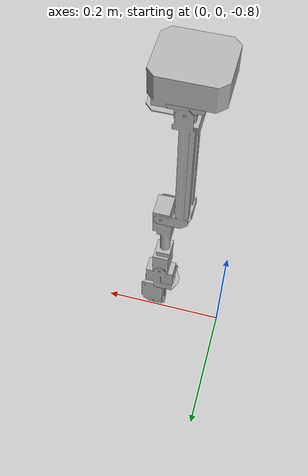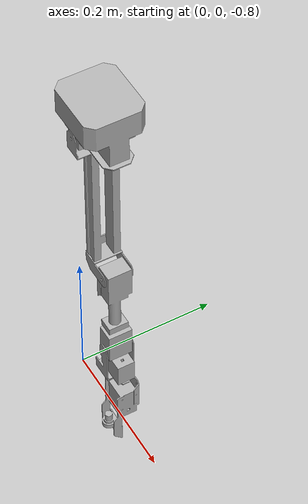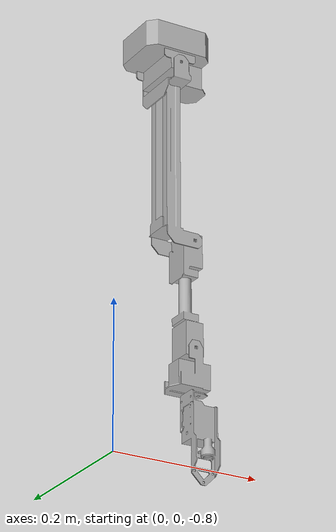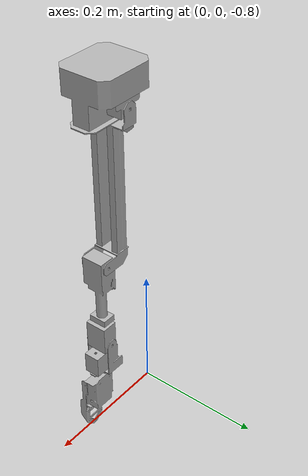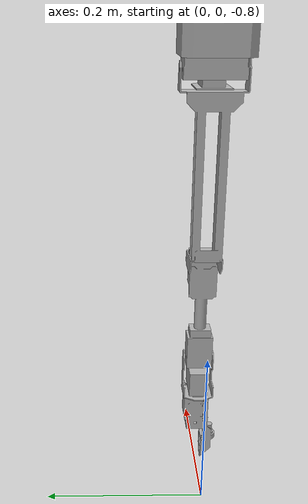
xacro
<?xml version="1.0" encoding="utf-8"?>
<robot name="myam_roarm" xmlns:xacro="http://www.ros.org/wiki/xacro">
  <link name="base_link">
    <inertial>
      <origin xyz="0 0 0" rpy="0 0 0"/>
      <mass value="0.001"/>
      <inertia ixx="1e-9" ixy="0" ixz="0" iyy="1e-9" iyz="0" izz="1e-9"/>
    </inertial>
  </link>

  <xacro:include filename="$(find myam_description)/urdf/roarm_m3_arm_mounted.xacro"/>
  <xacro:roarm_m3_arm_mounted
    parent_link="base_link"
    mount_xyz="0.073168 -0.0021131 -0.2185"
    mount_rpy="3.141592653589793 0 0.00022095"/>

  <!-- libgazebo_ros_control 在 PX4 的 myam.sdf 中加载；此处仅提供关节树供 robotParam 匹配 -->
</robot>

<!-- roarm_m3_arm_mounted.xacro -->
<robot xmlns:xacro="http://www.ros.org/wiki/xacro">
  <xacro:macro name="roarm_m3_arm_mounted" params="parent_link mount_xyz mount_rpy minimal_gripper_collision:=false">
    <material name="silver">
      <color rgba="0.700 0.700 0.700 1.000"/>
    </material>

    <!-- 父 link 上 origin 的 rpy：常需 roll=π 将 roarm 的 +Z 伸臂方向翻到机身 −Z（朝下），由 myam_sys.xacro 传入 -->
    <joint name="arm_mount_joint" type="fixed">
      <origin xyz="${mount_xyz}" rpy="${mount_rpy}"/>
      <parent link="${parent_link}"/>
      <child link="roarm_base_link"/>
    </joint>

    <link name="roarm_base_link">
      <inertial>
        <origin xyz="-0.0068 0 -0.03" rpy="0 0 0"/>
        <mass value="0.2562183"/>
        <inertia ixx="0.00029211" ixy="0" ixz="0" iyy="0.00035719" iyz="0" izz="0.000349421"/>
      </inertial>
      <visual>
        <origin xyz="0 0 0" rpy="0 0 0"/>
        <geometry>
          <mesh filename="file://$(find roarm_description)/meshes/roarm_m3/base_link.stl" scale="0.001 0.001 0.001"/>
        </geometry>
        <material name="silver"/>
      </visual>
      <collision>
        <origin xyz="0 0 0" rpy="0 0 0"/>
        <geometry>
          <mesh filename="file://$(find roarm_description)/meshes/roarm_m3/base_link.stl" scale="0.001 0.001 0.001"/>
        </geometry>
      </collision>
    </link>

    <link name="link1">
      <inertial>
        <origin xyz="0 0 0.037" rpy="0 0 0"/>
        <mass value="0.0729177"/>
        <inertia ixx="4.68465E-05" ixy="0" ixz="0" iyy="3.32107E-05" iyz="0" izz="5.01023E-05"/>
      </inertial>
      <visual>
        <origin xyz="0 0 0" rpy="0 0 0"/>
        <geometry>
          <mesh filename="file://$(find roarm_description)/meshes/roarm_m3/link1.stl" scale="0.001 0.001 0.001"/>
        </geometry>
        <material name="silver"/>
      </visual>
      <collision>
        <origin xyz="0 0 0" rpy="0 0 0"/>
        <geometry>
          <mesh filename="file://$(find roarm_description)/meshes/roarm_m3/link1.stl" scale="0.001 0.001 0.001"/>
        </geometry>
      </collision>
    </link>

    <link name="link2">
      <inertial>
        <origin xyz="0.119 0.012247 -0.0001" rpy="0 0 0"/>
        <mass value="0.0703216"/>
        <inertia ixx="5.46501E-05" ixy="0" ixz="0" iyy="0.000423091" iyz="0" izz="0.000404557"/>
      </inertial>
      <visual>
        <origin xyz="0 0 0" rpy="0 0 0"/>
        <geometry>
          <mesh filename="file://$(find roarm_description)/meshes/roarm_m3/link2.stl" scale="0.001 0.001 0.001"/>
        </geometry>
        <material name="silver"/>
      </visual>
      <collision>
        <origin xyz="0 0 0" rpy="0 0 0"/>
        <geometry>
          <mesh filename="file://$(find roarm_description)/meshes/roarm_m3/link2.stl" scale="0.001 0.001 0.001"/>
        </geometry>
      </collision>
    </link>

    <link name="link3">
      <inertial>
        <origin xyz="-0.0015 -0.0765 0.00505" rpy="0 0 0"/>
        <mass value="0.021608"/>
        <inertia ixx="6.37699E-05" iyy="3.67026E-06" izz="6.28965E-05" ixy="0.0" iyz="0" ixz="0"/>
      </inertial>
      <visual>
        <origin xyz="0 0 0" rpy="0 0 0"/>
        <geometry>
          <mesh filename="file://$(find roarm_description)/meshes/roarm_m3/link3.stl" scale="0.001 0.001 0.001"/>
        </geometry>
        <material name="silver"/>
      </visual>
      <collision>
        <origin xyz="0 0 0" rpy="0 0 0"/>
        <geometry>
          <mesh filename="file://$(find roarm_description)/meshes/roarm_m3/link3.stl" scale="0.001 0.001 0.001"/>
        </geometry>
      </collision>
    </link>

    <link name="link4">
      <inertial>
        <origin xyz="-0.0015 -0.022 -0.00075" rpy="0 0 0"/>
        <mass value="0.0099933"/>
        <inertia ixx="4.53979E-06" iyy="3.78103E-06" izz="5.60238E-06" ixy="-0.0" iyz="-0.0" ixz="0.0"/>
      </inertial>
      <visual>
        <origin xyz="0 0 0" rpy="0 0 0"/>
        <geometry>
          <mesh filename="file://$(find roarm_description)/meshes/roarm_m3/link4.stl" scale="0.001 0.001 0.001"/>
        </geometry>
        <material name="silver"/>
      </visual>
      <collision>
        <origin xyz="0 0 0" rpy="0 0 0"/>
        <geometry>
          <mesh filename="file://$(find roarm_description)/meshes/roarm_m3/link4.stl" scale="0.001 0.001 0.001"/>
        </geometry>
      </collision>
    </link>

    <link name="link5">
      <inertial>
        <origin xyz="-0.0078 0 0.0595" rpy="0 0 0"/>
        <mass value="0.0153928"/>
        <inertia ixx="2.02869E-05" iyy="2.14427E-05" izz="4.39495E-06" ixy="-0.0" iyz="0" ixz="0"/>
      </inertial>
      <visual>
        <origin xyz="0 0 0" rpy="0 0 0"/>
        <geometry>
          <mesh filename="file://$(find roarm_description)/meshes/roarm_m3/link5.stl" scale="0.001 0.001 0.001"/>
        </geometry>
        <material name="silver"/>
      </visual>
      <collision>
        <origin xyz="0 0 0" rpy="0 0 0"/>
        <geometry>
          <mesh filename="file://$(find roarm_description)/meshes/roarm_m3/link5.stl" scale="0.001 0.001 0.001"/>
        </geometry>
      </collision>
    </link>

    <link name="gripper_link">
      <inertial>
        <origin xyz="0.027 0.0027 -0.018935" rpy="0 0 0"/>
        <mass value="0.0028708"/>
        <inertia ixx="5.23216E-07" ixy="0" ixz="0" iyy="1.82071E-06" iyz="0" izz="1.60231E-06"/>
      </inertial>
      <visual>
        <origin xyz="0 0 0" rpy="0 0 0"/>
        <geometry>
          <mesh filename="file://$(find roarm_description)/meshes/roarm_m3/gripper_link.stl" scale="0.001 0.001 0.001"/>
        </geometry>
        <material name="silver"/>
      </visual>
      <xacro:unless value="${minimal_gripper_collision}">
        <collision>
          <origin xyz="0 0 0" rpy="0 0 0"/>
          <geometry>
            <mesh filename="file://$(find roarm_description)/meshes/roarm_m3/gripper_link.stl" scale="0.001 0.001 0.001"/>
          </geometry>
        </collision>
      </xacro:unless>
    </link>

    <link name="hand_tcp"/>

    <joint name="base_link_to_link1" type="revolute">
      <origin xyz="0.0 0.0 0.0" rpy="0 0 0"/>
      <parent link="roarm_base_link"/>
      <child link="link1"/>
      <axis xyz="0.0 0.0 1.0"/>
      <!-- RoArm uses TTL bus position servos.
           30 kg.cm @ 12V ~= 2.94 N.m stall torque; simulation keeps a small margin below stall. -->
      <limit lower="-3.1416" upper="3.1416" effort="2.8" velocity="2.2"/>
      <!-- 基线：阻尼/摩擦全 0，优先不卡地；塌臂时再把 damping 按 link4→link3→… 小步增加 -->
      <dynamics damping="0.001" friction="0.001"/>
    </joint>

    <joint name="link1_to_link2" type="revolute">
      <origin xyz="0.0 0.0 0.051959" rpy="-1.5708 -1.5708 0"/>
      <parent link="link1"/>
      <child link="link2"/>
      <axis xyz="-0.0 0 1.0"/>
      <limit lower="-1.5708" upper="1.5708" effort="2.8" velocity="2.0"/>
      <dynamics damping="0.001" friction="0.001"/>
    </joint>

    <joint name="link2_to_link3" type="revolute">
      <origin xyz="0.236815 0.030002 0" rpy="0 0 1.5708"/>
      <parent link="link2"/>
      <child link="link3"/>
      <axis xyz="0.0 0.0 1.0"/>
      <limit lower="-1" upper="2.95" effort="2.6" velocity="2.0"/>
      <dynamics damping="0.001" friction="0.001"/>
    </joint>

    <joint name="link3_to_link4" type="revolute">
      <origin xyz="0.0 -0.144586 0" rpy="0 0 0"/>
      <parent link="link3"/>
      <child link="link4"/>
      <axis xyz="0.0 0.0 1.0"/>
      <limit lower="-1.5708" upper="1.5708" effort="1.9" velocity="2.5"/>
      <dynamics damping="0.005" friction="0.005"/>
    </joint>

    <joint name="link4_to_link5" type="revolute">
      <origin xyz="0.015147 -0.053653 0" rpy="1.5708 1.5708 0"/>
      <parent link="link4"/>
      <child link="link5"/>
      <axis xyz="0.0 0.0 1.0"/>
      <limit lower="-3.1416" upper="3.1416" effort="1.9" velocity="2.5"/>
      <dynamics damping="0.001" friction="0.001"/>
    </joint>

    <joint name="link5_to_gripper_link" type="revolute">
      <origin xyz="0.00 0.018821 0.052035" rpy="-1.5708 -1.5708 0"/>
      <parent link="link5"/>
      <child link="gripper_link"/>
      <axis xyz="0.0 -0.0 1.0"/>
      <!-- Distal servo torque is closer to 20 kg.cm @ 12V ~= 1.96 N.m -->
      <limit lower="0" upper="1.5" effort="1.0" velocity="2.0"/>
      <dynamics damping="0.001" friction="0.001"/>
    </joint>

    <joint name="link5_to_hand_tcp" type="fixed">
      <origin xyz="0 0 0.115428" rpy="1.5708 -1.5708 0"/>
      <parent link="link5"/>
      <child link="hand_tcp"/>
    </joint>

    <transmission name="base_link_to_link1_tran">
      <type>transmission_interface/SimpleTransmission</type>
      <joint name="base_link_to_link1">
        <hardwareInterface>hardware_interface/EffortJointInterface</hardwareInterface>
      </joint>
      <actuator name="base_link_to_link1_actr">
        <hardwareInterface>hardware_interface/EffortJointInterface</hardwareInterface>
        <mechanicalReduction>1</mechanicalReduction>
      </actuator>
    </transmission>
    <transmission name="link1_to_link2_tran">
      <type>transmission_interface/SimpleTransmission</type>
      <joint name="link1_to_link2">
        <hardwareInterface>hardware_interface/EffortJointInterface</hardwareInterface>
      </joint>
      <actuator name="link1_to_link2_actr">
        <hardwareInterface>hardware_interface/EffortJointInterface</hardwareInterface>
        <mechanicalReduction>1</mechanicalReduction>
      </actuator>
    </transmission>
    <transmission name="link2_to_link3_tran">
      <type>transmission_interface/SimpleTransmission</type>
      <joint name="link2_to_link3">
        <hardwareInterface>hardware_interface/EffortJointInterface</hardwareInterface>
      </joint>
      <actuator name="link2_to_link3_actr">
        <hardwareInterface>hardware_interface/EffortJointInterface</hardwareInterface>
        <mechanicalReduction>1</mechanicalReduction>
      </actuator>
    </transmission>
    <transmission name="link3_to_link4_tran">
      <type>transmission_interface/SimpleTransmission</type>
      <joint name="link3_to_link4">
        <hardwareInterface>hardware_interface/EffortJointInterface</hardwareInterface>
      </joint>
      <actuator name="link3_to_link4_actr">
        <hardwareInterface>hardware_interface/EffortJointInterface</hardwareInterface>
        <mechanicalReduction>1</mechanicalReduction>
      </actuator>
    </transmission>
    <transmission name="link4_to_link5_tran">
      <type>transmission_interface/SimpleTransmission</type>
      <joint name="link4_to_link5">
        <hardwareInterface>hardware_interface/EffortJointInterface</hardwareInterface>
      </joint>
      <actuator name="link4_to_link5_actr">
        <hardwareInterface>hardware_interface/EffortJointInterface</hardwareInterface>
        <mechanicalReduction>1</mechanicalReduction>
      </actuator>
    </transmission>
    <transmission name="link5_to_gripper_link_tran">
      <type>transmission_interface/SimpleTransmission</type>
      <joint name="link5_to_gripper_link">
        <hardwareInterface>hardware_interface/EffortJointInterface</hardwareInterface>
      </joint>
      <actuator name="link5_to_gripper_link_actr">
        <hardwareInterface>hardware_interface/EffortJointInterface</hardwareInterface>
        <mechanicalReduction>1</mechanicalReduction>
      </actuator>
    </transmission>

    <xacro:property name="body_color" value="Gazebo/Silver"/>
    <gazebo reference="roarm_base_link">
      <material>${body_color}</material>
      <mu1>0.2</mu1>
      <mu2>0.2</mu2>
      <self_collide>false</self_collide>
      <gravity>true</gravity>
    </gazebo>
    <gazebo reference="link1">
      <material>${body_color}</material>
      <mu1>0.2</mu1>
      <mu2>0.2</mu2>
      <self_collide>false</self_collide>
    </gazebo>
    <gazebo reference="link2">
      <material>${body_color}</material>
      <mu1>0.2</mu1>
      <mu2>0.2</mu2>
      <self_collide>false</self_collide>
    </gazebo>
    <gazebo reference="link3">
      <material>${body_color}</material>
      <mu1>0.03</mu1>
      <mu2>0.03</mu2>
      <self_collide>false</self_collide>
    </gazebo>
    <gazebo reference="link4">
      <material>${body_color}</material>
      <mu1>0.03</mu1>
      <mu2>0.03</mu2>
      <self_collide>false</self_collide>
    </gazebo>
    <gazebo reference="link5">
      <material>${body_color}</material>
      <mu1>0.03</mu1>
      <mu2>0.03</mu2>
      <self_collide>false</self_collide>
    </gazebo>
    <gazebo reference="gripper_link">
      <material>${body_color}</material>
      <mu1>0.03</mu1>
      <mu2>0.03</mu2>
      <self_collide>false</self_collide>
    </gazebo>
  </xacro:macro>
</robot>
